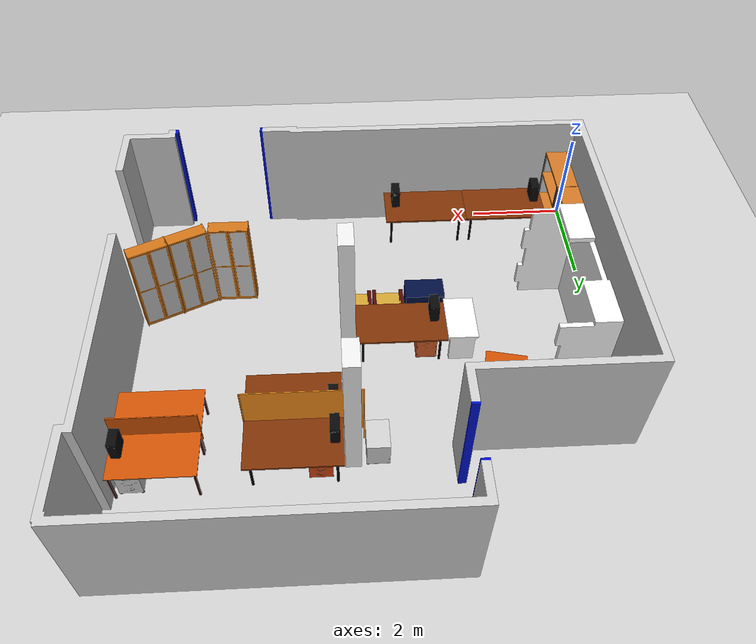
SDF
<sdf version="1.6">
 <world name="default">
  <light name="sun" type="directional">
   <pose>0 0 10 0 -0 0</pose>
   <diffuse>0.8 0.8 0.8 1</diffuse>
   <specular>0.2 0.2 0.2 1</specular>
   <attenuation>
    <range>1000</range>
    <constant>0.9</constant>
    <linear>0.01</linear>
    <quadratic>0.001</quadratic>
   </attenuation>
   <direction>-0.5 0.1 -0.9</direction>
  </light>
  <model name="ground_plane">
   <static>1</static>
   <link name="link">
    <collision name="collision">
     <geometry><plane><normal>0 0 1</normal><size>100 100</size></plane></geometry>
     <surface>
      <contact><collide_bitmask>65535</collide_bitmask></contact>
      <friction><ode><mu>100</mu><mu2>50</mu2></ode></friction>
     </surface>
    </collision>
    <visual name="visual">
     <cast_shadows>0</cast_shadows>
     <geometry><plane><normal>0 0 1</normal><size>100 100</size></plane></geometry>
     <material>
      <script><uri>file://media/materials/scripts/gazebo.material</uri><name>Gazebo/Grey</name></script>
     </material>
    </visual>
   </link>
  </model>
  <gravity>0 0 -9.8</gravity>
  <magnetic_field>6e-06 2.3e-05 -4.2e-05</magnetic_field>
  <atmosphere type="adiabatic"/>
  <physics name="default_physics" default="0" type="ode">
   <max_step_size>0.001</max_step_size>
   <real_time_factor>1</real_time_factor>
   <real_time_update_rate>1000</real_time_update_rate>
  </physics>
  <scene><ambient>0.4 0.4 0.4 1</ambient><background>0.7 0.7 0.7 1</background><shadows>1</shadows></scene>
  <spherical_coordinates>
   <surface_model>EARTH_WGS84</surface_model>
   <latitude_deg>0</latitude_deg>
   <longitude_deg>0</longitude_deg>
   <elevation>0</elevation>
   <heading_deg>0</heading_deg>
  </spherical_coordinates>
  <model name="p109">
   <static>1</static>
   <link name="p109">
    <collision name="p109"><geometry><mesh><uri>model://p109/meshes/model.dae</uri></mesh></geometry></collision>
    <visual name="p109"><geometry><mesh><uri>model://p109/meshes/model.dae</uri></mesh></geometry></visual>
   </link>
  </model>
  <model name="warehouse_shelves">
   <static>1</static>
   <link name="warehouse_shelves">
    <collision name="warehouse_shelves">
     <geometry><mesh><uri>model://warehouse_shelves/meshes/model.dae</uri></mesh></geometry>
    </collision>
    <visual name="warehouse_shelves">
     <geometry><mesh><uri>model://warehouse_shelves/meshes/model.dae</uri></mesh></geometry>
    </visual>
   </link>
   <pose>0.33 0.605 0 0 -0 0</pose>
  </model>
  <model name="warehouse_shelves_clone">
   <static>1</static>
   <link name="warehouse_shelves">
    <collision name="warehouse_shelves">
     <geometry><mesh><uri>model://warehouse_shelves/meshes/model.dae</uri></mesh></geometry>
    </collision>
    <visual name="warehouse_shelves">
     <geometry><mesh><uri>model://warehouse_shelves/meshes/model.dae</uri></mesh></geometry>
    </visual>
   </link>
   <pose>0.33 1.815 0 0 -0 0</pose>
  </model>
  <model name="velma_alcove">
   <static>1</static>
   <link name="velma_alcove">
    <collision name="velma_alcove">
     <geometry><mesh><uri>model://velma_alcove/meshes/model.dae</uri></mesh></geometry>
    </collision>
    <visual name="velma_alcove">
     <geometry><mesh><uri>model://velma_alcove/meshes/model.dae</uri></mesh></geometry>
    </visual>
   </link>
   <pose>0.883781 2.46838 0 0 -0 0</pose>
  </model>
  <model name="table_1">
   <static>1</static>
   <link name="table_1">
    <collision name="table_1">
     <geometry><mesh><uri>model://table_1/meshes/model.dae</uri></mesh></geometry>
    </collision>
    <visual name="table_1"><geometry><mesh><uri>model://table_1/meshes/model.dae</uri></mesh></geometry></visual>
   </link>
   <pose>1.47989 0.505185 0 0 -0 1.57</pose>
  </model>
  <model name="table_1_0">
   <static>1</static>
   <link name="table_1">
    <collision name="table_1">
     <geometry><mesh><uri>model://table_1/meshes/model.dae</uri></mesh></geometry>
    </collision>
    <visual name="table_1"><geometry><mesh><uri>model://table_1/meshes/model.dae</uri></mesh></geometry></visual>
   </link>
   <pose>3.28663 0.506163 0 0 -0 1.57</pose>
  </model>
  <model name="table_3">
   <static>1</static>
   <link name="table_3">
    <collision name="table_3">
     <geometry><mesh><uri>model://table_3/meshes/model.dae</uri></mesh></geometry>
    </collision>
    <visual name="table_3"><geometry><mesh><uri>model://table_3/meshes/model.dae</uri></mesh></geometry></visual>
   </link>
   <pose>2.19008 5.23514 0 0 0 -0.218863</pose>
  </model>
  <model name="table_2">
   <static>1</static>
   <link name="table_2">
    <collision name="table_2">
     <geometry><mesh><uri>model://table_2/meshes/model.dae</uri></mesh></geometry>
    </collision>
    <visual name="table_2"><geometry><mesh><uri>model://table_2/meshes/model.dae</uri></mesh></geometry></visual>
   </link>
   <pose>8.66068 6.80591 0 0 -0 1.57</pose>
  </model>
  <model name="table_2_0">
   <static>1</static>
   <link name="table_2">
    <collision name="table_2">
     <geometry><mesh><uri>model://table_2/meshes/model.dae</uri></mesh></geometry>
    </collision>
    <visual name="table_2"><geometry><mesh><uri>model://table_2/meshes/model.dae</uri></mesh></geometry></visual>
   </link>
   <pose>8.66104 5.87062 0 0 0 -1.57</pose>
  </model>
  <model name="driving_cabinet_3d">
   <static>1</static>
   <link name="driving_cabinet_3d">
    <collision name="driving_cabinet_3d">
     <geometry><mesh><uri>model://driving_cabinet_3d/meshes/model.dae</uri></mesh></geometry>
    </collision>
    <visual name="driving_cabinet_3d">
     <geometry><mesh><uri>model://driving_cabinet_3d/meshes/model.dae</uri></mesh></geometry>
    </visual>
   </link>
   <pose>9.13135 6.83217 0 0 -0 1.57</pose>
  </model>
  <model name="driving_cabinet_3d_0">
   <static>1</static>
   <link name="driving_cabinet_3d">
    <collision name="driving_cabinet_3d">
     <geometry><mesh><uri>model://driving_cabinet_3d/meshes/model.dae</uri></mesh></geometry>
    </collision>
    <visual name="driving_cabinet_3d">
     <geometry><mesh><uri>model://driving_cabinet_3d/meshes/model.dae</uri></mesh></geometry>
    </visual>
   </link>
   <pose>9.12275 5.87151 0 0 0 -1.57</pose>
  </model>
  <model name="bookshelf">
   <static>1</static>
   <link name="bookshelf">
    <collision name="bookshelf">
     <geometry><mesh><uri>model://bookshelf/meshes/model.dae</uri></mesh></geometry>
    </collision>
    <visual name="bookshelf">
     <geometry><mesh><uri>model://bookshelf/meshes/model.dae</uri></mesh></geometry>
    </visual>
   </link>
   <pose>9.02755 2.89993 0 0 -0 2</pose>
  </model>
  <model name="bookshelf_0">
   <static>1</static>
   <link name="bookshelf">
    <collision name="bookshelf">
     <geometry><mesh><uri>model://bookshelf/meshes/model.dae</uri></mesh></geometry>
    </collision>
    <visual name="bookshelf">
     <geometry><mesh><uri>model://bookshelf/meshes/model.dae</uri></mesh></geometry>
    </visual>
   </link>
   <pose>8.29473 2.56784 0 0 -0 2</pose>
  </model>
  <model name="bookshelf_1">
   <static>1</static>
   <link name="bookshelf">
    <collision name="bookshelf">
     <geometry><mesh><uri>model://bookshelf/meshes/model.dae</uri></mesh></geometry>
    </collision>
    <visual name="bookshelf">
     <geometry><mesh><uri>model://bookshelf/meshes/model.dae</uri></mesh></geometry>
    </visual>
   </link>
   <pose>7.47172 2.38049 0 0 -0 1.57</pose>
  </model>
  <model name="table_1_1">
   <static>1</static>
   <link name="table_1">
    <collision name="table_1">
     <geometry><mesh><uri>model://table_1/meshes/model.dae</uri></mesh></geometry>
    </collision>
    <visual name="table_1"><geometry><mesh><uri>model://table_1/meshes/model.dae</uri></mesh></geometry></visual>
   </link>
   <pose>6.21255 6.67795 0 0 -0 1.57</pose>
  </model>
  <model name="table_1_2">
   <static>1</static>
   <link name="table_1">
    <collision name="table_1">
     <geometry><mesh><uri>model://table_1/meshes/model.dae</uri></mesh></geometry>
    </collision>
    <visual name="table_1"><geometry><mesh><uri>model://table_1/meshes/model.dae</uri></mesh></geometry></visual>
   </link>
   <pose>6.2169 5.6503 0 0 -0 1.57</pose>
  </model>
  <model name="driving_cabinet_4d">
   <static>1</static>
   <link name="driving_cabinet_4d">
    <collision name="driving_cabinet_4d">
     <geometry><mesh><uri>model://driving_cabinet_4d/meshes/model.dae</uri></mesh></geometry>
    </collision>
    <visual name="driving_cabinet_4d">
     <geometry><mesh><uri>model://driving_cabinet_4d/meshes/model.dae</uri></mesh></geometry>
    </visual>
   </link>
   <pose>6.70281 5.91107 0 0 0 -1.57</pose>
  </model>
  <model name="driving_cabinet_4d_0">
   <static>1</static>
   <link name="driving_cabinet_4d">
    <collision name="driving_cabinet_4d">
     <geometry><mesh><uri>model://driving_cabinet_4d/meshes/model.dae</uri></mesh></geometry>
    </collision>
    <visual name="driving_cabinet_4d">
     <geometry><mesh><uri>model://driving_cabinet_4d/meshes/model.dae</uri></mesh></geometry>
    </visual>
   </link>
   <pose>5.74386 6.38609 0 0 -0 1.57</pose>
  </model>
  <model name="driving_cabinet_3d_1">
   <static>1</static>
   <link name="driving_cabinet_3d">
    <collision name="driving_cabinet_3d">
     <geometry><mesh><uri>model://driving_cabinet_3d/meshes/model.dae</uri></mesh></geometry>
    </collision>
    <visual name="driving_cabinet_3d">
     <geometry><mesh><uri>model://driving_cabinet_3d/meshes/model.dae</uri></mesh></geometry>
    </visual>
   </link>
   <pose>4.69971 6.47153 0 0 0 -1.57</pose>
  </model>
  <model name="table_1_3">
   <static>1</static>
   <link name="table_1">
    <collision name="table_1">
     <geometry><mesh><uri>model://table_1/meshes/model.dae</uri></mesh></geometry>
    </collision>
    <visual name="table_1"><geometry><mesh><uri>model://table_1/meshes/model.dae</uri></mesh></geometry></visual>
   </link>
   <pose>4.09542 3.9714 0 0 -0 1.57</pose>
  </model>
  <model name="driving_cabinet_2d">
   <static>1</static>
   <link name="driving_cabinet_2d">
    <collision name="driving_cabinet_2d">
     <geometry><mesh><uri>model://driving_cabinet_2d/meshes/model.dae</uri></mesh></geometry>
    </collision>
    <visual name="driving_cabinet_2d">
     <geometry><mesh><uri>model://driving_cabinet_2d/meshes/model.dae</uri></mesh></geometry>
    </visual>
   </link>
   <pose>3.58874 4.0517 0 0 -0 1.57</pose>
  </model>
  <model name="table_4">
   <static>1</static>
   <link name="table_4">
    <collision name="table_4">
     <geometry><mesh><uri>model://table_4/meshes/model.dae</uri></mesh></geometry>
    </collision>
    <visual name="table_4"><geometry><mesh><uri>model://table_4/meshes/model.dae</uri></mesh></geometry></visual>
   </link>
   <pose>2.88785 3.91124 0 0 -0 3.14</pose>
  </model>
  <model name="armchair">
   <static>1</static>
   <link name="armchair">
    <collision name="armchair">
     <geometry><mesh><uri>model://armchair/meshes/model.dae</uri></mesh></geometry>
    </collision>
    <visual name="armchair">
     <geometry><mesh><uri>model://armchair/meshes/model.dae</uri></mesh></geometry>
    </visual>
   </link>
   <pose>4.94972 2.84408 0 0 0 -1.57</pose>
  </model>
  <model name="armchair_0">
   <static>1</static>
   <link name="armchair">
    <collision name="armchair">
     <geometry><mesh><uri>model://armchair/meshes/model.dae</uri></mesh></geometry>
    </collision>
    <visual name="armchair">
     <geometry><mesh><uri>model://armchair/meshes/model.dae</uri></mesh></geometry>
    </visual>
   </link>
   <pose>4.28269 2.84413 0 0 0 -1.57</pose>
  </model>
  <model name="short_cabinet">
   <static>1</static>
   <link name="short_cabinet">
    <collision name="short_cabinet">
     <geometry><mesh><uri>model://short_cabinet/meshes/model.dae</uri></mesh></geometry>
    </collision>
    <visual name="short_cabinet">
     <geometry><mesh><uri>model://short_cabinet/meshes/model.dae</uri></mesh></geometry>
    </visual>
   </link>
   <pose>3.54443 3.12663 0 0 0 -1.57</pose>
  </model>
  <model name="column_p109_clone">
   <link name="link">
    <inertial>
     <mass>1</mass>
     <inertia>
      <ixx>0.166667</ixx>
      <ixy>0</ixy>
      <ixz>0</ixz>
      <iyy>0.166667</iyy>
      <iyz>0</iyz>
      <izz>0.166667</izz>
     </inertia>
    </inertial>
    <visual name="visual">
     <geometry><box><size>0.3 0.6 3</size></box></geometry>
     <material>
      <script><name>Gazebo/White</name><uri>file://media/materials/scripts/gazebo.material</uri></script>
      <shader type="vertex"><normal_map>__default__</normal_map></shader>
      <ambient>1 1 1 1</ambient>
      <diffuse>0.7 0.7 0.7 1</diffuse>
      <specular>0.01 0.01 0.01 1</specular>
      <emissive>0 0 0 1</emissive>
     </material>
     <pose>0 0 1.5 0 -0 0</pose>
    </visual>
    <collision name="collision">
     <pose>0 0 1.5 0 -0 0</pose>
     <geometry><box><size>0.3 0.6 3</size></box></geometry>
     <surface>
      <friction>
       <ode><mu>1</mu><mu2>1</mu2><fdir1>0 0 0</fdir1><slip1>0</slip1><slip2>0</slip2></ode>
       <torsional>
        <coefficient>1</coefficient>
        <patch_radius>0</patch_radius>
        <surface_radius>0</surface_radius>
        <use_patch_radius>1</use_patch_radius>
        <ode><slip>0</slip></ode>
       </torsional>
      </friction>
      <bounce><restitution_coefficient>0</restitution_coefficient><threshold>1e+06</threshold></bounce>
      <contact>
       <collide_without_contact>0</collide_without_contact>
       <collide_without_contact_bitmask>1</collide_without_contact_bitmask>
       <collide_bitmask>1</collide_bitmask>
       <ode>
        <soft_cfm>0</soft_cfm>
        <soft_erp>0.2</soft_erp>
        <kp>1e+13</kp>
        <kd>1</kd>
        <max_vel>0.01</max_vel>
        <min_depth>0</min_depth>
       </ode>
       <bullet>
        <split_impulse>1</split_impulse>
        <split_impulse_penetration_threshold>-0.01</split_impulse_penetration_threshold>
        <soft_cfm>0</soft_cfm>
        <soft_erp>0.2</soft_erp>
        <kp>1e+13</kp>
        <kd>1</kd>
       </bullet>
      </contact>
     </surface>
    </collision>
   </link>
   <static>1</static>
   <pose>5.15 3.77 0 0 -0 0</pose>
  </model>
  <model name="column_p109">
   <link name="link">
    <inertial>
     <mass>1</mass>
     <inertia>
      <ixx>0.166667</ixx>
      <ixy>0</ixy>
      <ixz>0</ixz>
      <iyy>0.166667</iyy>
      <iyz>0</iyz>
      <izz>0.166667</izz>
     </inertia>
    </inertial>
    <visual name="visual">
     <geometry><box><size>0.3 0.6 3</size></box></geometry>
     <material>
      <script><name>Gazebo/White</name><uri>file://media/materials/scripts/gazebo.material</uri></script>
      <shader type="vertex"><normal_map>__default__</normal_map></shader>
      <ambient>1 1 1 1</ambient>
      <diffuse>0.7 0.7 0.7 1</diffuse>
      <specular>0.01 0.01 0.01 1</specular>
      <emissive>0 0 0 1</emissive>
     </material>
     <pose>0 0 1.5 0 -0 0</pose>
    </visual>
    <collision name="collision">
     <pose>0 0 1.5 0 -0 0</pose>
     <geometry><box><size>0.3 0.6 3</size></box></geometry>
     <surface>
      <friction>
       <ode><mu>1</mu><mu2>1</mu2><fdir1>0 0 0</fdir1><slip1>0</slip1><slip2>0</slip2></ode>
       <torsional>
        <coefficient>1</coefficient>
        <patch_radius>0</patch_radius>
        <surface_radius>0</surface_radius>
        <use_patch_radius>1</use_patch_radius>
        <ode><slip>0</slip></ode>
       </torsional>
      </friction>
      <bounce><restitution_coefficient>0</restitution_coefficient><threshold>1e+06</threshold></bounce>
      <contact>
       <collide_without_contact>0</collide_without_contact>
       <collide_without_contact_bitmask>1</collide_without_contact_bitmask>
       <collide_bitmask>1</collide_bitmask>
       <ode>
        <soft_cfm>0</soft_cfm>
        <soft_erp>0.2</soft_erp>
        <kp>1e+13</kp>
        <kd>1</kd>
        <max_vel>0.01</max_vel>
        <min_depth>0</min_depth>
       </ode>
       <bullet>
        <split_impulse>1</split_impulse>
        <split_impulse_penetration_threshold>-0.01</split_impulse_penetration_threshold>
        <soft_cfm>0</soft_cfm>
        <soft_erp>0.2</soft_erp>
        <kp>1e+13</kp>
        <kd>1</kd>
       </bullet>
      </contact>
     </surface>
    </collision>
   </link>
   <static>1</static>
   <pose>5.15367 6.47886 0 0 -0 0</pose>
  </model>
  <model name="some_box">
   <link name="link">
    <inertial>
     <mass>1</mass>
     <inertia>
      <ixx>0.166667</ixx>
      <ixy>0</ixy>
      <ixz>0</ixz>
      <iyy>0.166667</iyy>
      <iyz>0</iyz>
      <izz>0.166667</izz>
     </inertia>
    </inertial>
    <pose>-0.006361 -0.099993 0 0 -0 0</pose>
    <visual name="visual">
     <geometry><box><size>1 0.85 1</size></box></geometry>
     <material>
      <script><name>Gazebo/Grey</name><uri>file://media/materials/scripts/gazebo.material</uri></script>
      <shader type="vertex"><normal_map>__default__</normal_map></shader>
      <ambient>0.3 0.3 0.3 1</ambient>
      <diffuse>0.7 0.7 0.7 1</diffuse>
      <specular>0.01 0.01 0.01 1</specular>
      <emissive>0 0 0 1</emissive>
     </material>
    </visual>
    <collision name="collision">
     <geometry><box><size>1 0.85 1</size></box></geometry>
     <surface>
      <friction>
       <ode><mu>1</mu><mu2>1</mu2><fdir1>0 0 0</fdir1><slip1>0</slip1><slip2>0</slip2></ode>
       <torsional>
        <coefficient>1</coefficient>
        <patch_radius>0</patch_radius>
        <surface_radius>0</surface_radius>
        <use_patch_radius>1</use_patch_radius>
        <ode><slip>0</slip></ode>
       </torsional>
      </friction>
      <bounce><restitution_coefficient>0</restitution_coefficient><threshold>1e+06</threshold></bounce>
      <contact>
       <collide_without_contact>0</collide_without_contact>
       <collide_without_contact_bitmask>1</collide_without_contact_bitmask>
       <collide_bitmask>1</collide_bitmask>
       <ode>
        <soft_cfm>0</soft_cfm>
        <soft_erp>0.2</soft_erp>
        <kp>1e+13</kp>
        <kd>1</kd>
        <max_vel>0.01</max_vel>
        <min_depth>0</min_depth>
       </ode>
       <bullet>
        <split_impulse>1</split_impulse>
        <split_impulse_penetration_threshold>-0.01</split_impulse_penetration_threshold>
        <soft_cfm>0</soft_cfm>
        <soft_erp>0.2</soft_erp>
        <kp>1e+13</kp>
        <kd>1</kd>
       </bullet>
      </contact>
     </surface>
    </collision>
   </link>
   <static>1</static>
   <pose>0.991302 6.04767 0.5 0 0 -3e-06</pose>
  </model>
  <model name="standing_board">
   <link name="link">
    <inertial>
     <mass>1</mass>
     <inertia>
      <ixx>0.166667</ixx>
      <ixy>0</ixy>
      <ixz>0</ixz>
      <iyy>0.166667</iyy>
      <iyz>0</iyz>
      <izz>0.166667</izz>
     </inertia>
    </inertial>
    <visual name="ModelPreview_10::link::visual_2">
     <geometry><cylinder><radius>0.0125</radius><length>1.56</length></cylinder></geometry>
     <material>
      <script><name>Gazebo/Orange</name><uri>file://media/materials/scripts/gazebo.material</uri></script>
      <shader type="vertex"><normal_map>__default__</normal_map></shader>
      <ambient>1 1 1 1</ambient>
      <diffuse>0.7 0.7 0.7 1</diffuse>
      <specular>0.01 0.01 0.01 1</specular>
      <emissive>0 0 0 1</emissive>
     </material>
     <pose>-1.0925 0 0.78 0 -0 0</pose>
    </visual>
    <visual name="ModelPreview_10::link::visual_1">
     <geometry><cylinder><radius>0.0125</radius><length>1.56</length></cylinder></geometry>
     <material>
      <script><name>Gazebo/Orange</name><uri>file://media/materials/scripts/gazebo.material</uri></script>
      <shader type="vertex"><normal_map>__default__</normal_map></shader>
      <ambient>1 1 1 1</ambient>
      <diffuse>0.7 0.7 0.7 1</diffuse>
      <specular>0.01 0.01 0.01 1</specular>
      <emissive>0 0 0 1</emissive>
     </material>
     <pose>1.0925 0 0.78 0 -0 0</pose>
    </visual>
    <visual name="visual">
     <geometry><box><size>2.15 0.018 1.2</size></box></geometry>
     <material>
      <script><name>Gazebo/Orange</name><uri>file://media/materials/scripts/gazebo.material</uri></script>
      <shader type="vertex"><normal_map>__default__</normal_map></shader>
      <ambient>1 0.5 0 1</ambient>
      <diffuse>0.7 0.7 0.7 1</diffuse>
      <specular>0.01 0.01 0.01 1</specular>
      <emissive>0 0 0 1</emissive>
     </material>
     <pose>0 0 0.96 0 -0 0</pose>
    </visual>
    <collision name="collision_1">
     <pose>1.0925 0 0.78 0 -0 0</pose>
     <geometry><cylinder><radius>0.0125</radius><length>1.56</length></cylinder></geometry>
     <surface>
      <friction>
       <ode><mu>1</mu><mu2>1</mu2><fdir1>0 0 0</fdir1><slip1>0</slip1><slip2>0</slip2></ode>
       <torsional>
        <coefficient>1</coefficient>
        <patch_radius>0</patch_radius>
        <surface_radius>0</surface_radius>
        <use_patch_radius>1</use_patch_radius>
        <ode><slip>0</slip></ode>
       </torsional>
      </friction>
      <bounce><restitution_coefficient>0</restitution_coefficient><threshold>1e+06</threshold></bounce>
      <contact>
       <collide_without_contact>0</collide_without_contact>
       <collide_without_contact_bitmask>1</collide_without_contact_bitmask>
       <collide_bitmask>1</collide_bitmask>
       <ode>
        <soft_cfm>0</soft_cfm>
        <soft_erp>0.2</soft_erp>
        <kp>1e+13</kp>
        <kd>1</kd>
        <max_vel>0.01</max_vel>
        <min_depth>0</min_depth>
       </ode>
       <bullet>
        <split_impulse>1</split_impulse>
        <split_impulse_penetration_threshold>-0.01</split_impulse_penetration_threshold>
        <soft_cfm>0</soft_cfm>
        <soft_erp>0.2</soft_erp>
        <kp>1e+13</kp>
        <kd>1</kd>
       </bullet>
      </contact>
     </surface>
    </collision>
    <collision name="collision_2">
     <pose>-1.0925 0 0.78 0 -0 0</pose>
     <geometry><cylinder><radius>0.0125</radius><length>1.56</length></cylinder></geometry>
     <surface>
      <friction>
       <ode><mu>1</mu><mu2>1</mu2><fdir1>0 0 0</fdir1><slip1>0</slip1><slip2>0</slip2></ode>
       <torsional>
        <coefficient>1</coefficient>
        <patch_radius>0</patch_radius>
        <surface_radius>0</surface_radius>
        <use_patch_radius>1</use_patch_radius>
        <ode><slip>0</slip></ode>
       </torsional>
      </friction>
      <bounce><restitution_coefficient>0</restitution_coefficient><threshold>1e+06</threshold></bounce>
      <contact>
       <collide_without_contact>0</collide_without_contact>
       <collide_without_contact_bitmask>1</collide_without_contact_bitmask>
       <collide_bitmask>1</collide_bitmask>
       <ode>
        <soft_cfm>0</soft_cfm>
        <soft_erp>0.2</soft_erp>
        <kp>1e+13</kp>
        <kd>1</kd>
        <max_vel>0.01</max_vel>
        <min_depth>0</min_depth>
       </ode>
       <bullet>
        <split_impulse>1</split_impulse>
        <split_impulse_penetration_threshold>-0.01</split_impulse_penetration_threshold>
        <soft_cfm>0</soft_cfm>
        <soft_erp>0.2</soft_erp>
        <kp>1e+13</kp>
        <kd>1</kd>
       </bullet>
      </contact>
     </surface>
    </collision>
    <collision name="collision">
     <pose>0 0 0.96 0 -0 0</pose>
     <geometry><box><size>2.15 0.018 1.2</size></box></geometry>
     <surface>
      <friction>
       <ode><mu>1</mu><mu2>1</mu2><fdir1>0 0 0</fdir1><slip1>0</slip1><slip2>0</slip2></ode>
       <torsional>
        <coefficient>1</coefficient>
        <patch_radius>0</patch_radius>
        <surface_radius>0</surface_radius>
        <use_patch_radius>1</use_patch_radius>
        <ode><slip>0</slip></ode>
       </torsional>
      </friction>
      <bounce><restitution_coefficient>0</restitution_coefficient><threshold>1e+06</threshold></bounce>
      <contact>
       <collide_without_contact>0</collide_without_contact>
       <collide_without_contact_bitmask>1</collide_without_contact_bitmask>
       <collide_bitmask>1</collide_bitmask>
       <ode>
        <soft_cfm>0</soft_cfm>
        <soft_erp>0.2</soft_erp>
        <kp>1e+13</kp>
        <kd>1</kd>
        <max_vel>0.01</max_vel>
        <min_depth>0</min_depth>
       </ode>
       <bullet>
        <split_impulse>1</split_impulse>
        <split_impulse_penetration_threshold>-0.01</split_impulse_penetration_threshold>
        <soft_cfm>0</soft_cfm>
        <soft_erp>0.2</soft_erp>
        <kp>1e+13</kp>
        <kd>1</kd>
       </bullet>
      </contact>
     </surface>
    </collision>
   </link>
   <static>1</static>
   <pose>6.02441 6.16345 0 0 -0 0</pose>
  </model>
  <audio><device>default</device></audio>
  <model name="high_cabinet">
   <static>1</static>
   <link name="high_cabinet">
    <collision name="high_cabinet">
     <geometry><mesh><uri>model://high_cabinet/meshes/model.dae</uri></mesh></geometry>
    </collision>
    <visual name="high_cabinet">
     <geometry><mesh><uri>model://high_cabinet/meshes/model.dae</uri></mesh></geometry>
    </visual>
   </link>
   <pose>5.28103 8.59448 0 0 0 -1.57</pose>
  </model>
  <model name="high_cabinet_0">
   <static>1</static>
   <link name="high_cabinet">
    <collision name="high_cabinet">
     <geometry><mesh><uri>model://high_cabinet/meshes/model.dae</uri></mesh></geometry>
    </collision>
    <visual name="high_cabinet">
     <geometry><mesh><uri>model://high_cabinet/meshes/model.dae</uri></mesh></geometry>
    </visual>
   </link>
   <pose>6.49567 8.59378 0 0 0 -1.57</pose>
  </model>
  <model name="2d_cabinet">
   <static>1</static>
   <link name="2d_cabinet">
    <collision name="2d_cabinet">
     <geometry><mesh><uri>model://2d_cabinet/meshes/model.dae</uri></mesh></geometry>
    </collision>
    <visual name="2d_cabinet">
     <geometry><mesh><uri>model://2d_cabinet/meshes/model.dae</uri></mesh></geometry>
    </visual>
   </link>
   <pose>7.49743 8.58116 0 0 0 -1.57</pose>
  </model>
  <model name="pc_station">
   <static>1</static>
   <link name="pc_station">
    <collision name="pc_station">
     <geometry><mesh><uri>model://pc_station/meshes/model.dae</uri></mesh></geometry>
    </collision>
    <visual name="pc_station">
     <geometry><mesh><uri>model://pc_station/meshes/model.dae</uri></mesh></geometry>
    </visual>
   </link>
   <pose>5.47999 5.9023 0.75 0 0 -1.57</pose>
  </model>
  <model name="pc_station_clone">
   <static>1</static>
   <link name="pc_station">
    <collision name="pc_station">
     <geometry><mesh><uri>model://pc_station/meshes/model.dae</uri></mesh></geometry>
    </collision>
    <visual name="pc_station">
     <geometry><mesh><uri>model://pc_station/meshes/model.dae</uri></mesh></geometry>
    </visual>
   </link>
   <pose>5.46972 6.54051 0.75 0 -0 1.57</pose>
  </model>
  <model name="pc_station_clone_clone">
   <static>1</static>
   <link name="pc_station">
    <collision name="pc_station">
     <geometry><mesh><uri>model://pc_station/meshes/model.dae</uri></mesh></geometry>
    </collision>
    <visual name="pc_station">
     <geometry><mesh><uri>model://pc_station/meshes/model.dae</uri></mesh></geometry>
    </visual>
   </link>
   <pose>3.42431 3.80543 0.75 0 -0 1.57</pose>
  </model>
  <model name="pc_station_clone_clone_0">
   <static>1</static>
   <link name="pc_station">
    <collision name="pc_station">
     <geometry><mesh><uri>model://pc_station/meshes/model.dae</uri></mesh></geometry>
    </collision>
    <visual name="pc_station">
     <geometry><mesh><uri>model://pc_station/meshes/model.dae</uri></mesh></geometry>
    </visual>
   </link>
   <pose>3.94534 0.348295 0.75 0 -0 1.57</pose>
  </model>
  <model name="pc_station_clone_clone_1">
   <static>1</static>
   <link name="pc_station">
    <collision name="pc_station">
     <geometry><mesh><uri>model://pc_station/meshes/model.dae</uri></mesh></geometry>
    </collision>
    <visual name="pc_station">
     <geometry><mesh><uri>model://pc_station/meshes/model.dae</uri></mesh></geometry>
    </visual>
   </link>
   <pose>0.77767 0.31381 0.75 0 -0 1.57</pose>
  </model>
  <model name="pc_station_clone_clone_2">
   <static>1</static>
   <link name="pc_station">
    <collision name="pc_station">
     <geometry><mesh><uri>model://pc_station/meshes/model.dae</uri></mesh></geometry>
    </collision>
    <visual name="pc_station">
     <geometry><mesh><uri>model://pc_station/meshes/model.dae</uri></mesh></geometry>
    </visual>
   </link>
   <pose>9.30227 6.66458 0.74 0 -0 1.57</pose>
  </model>
 </world>
</sdf>
